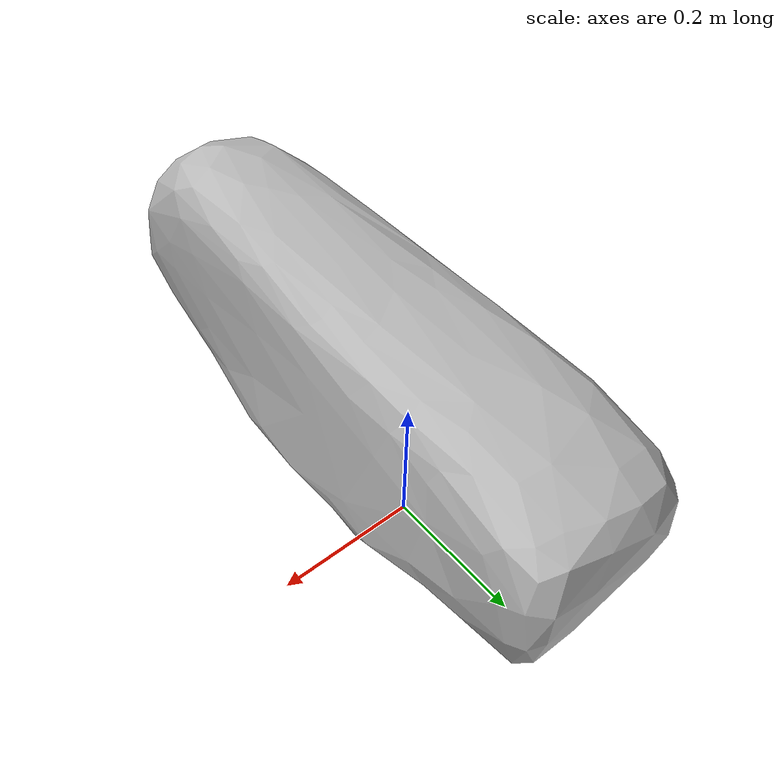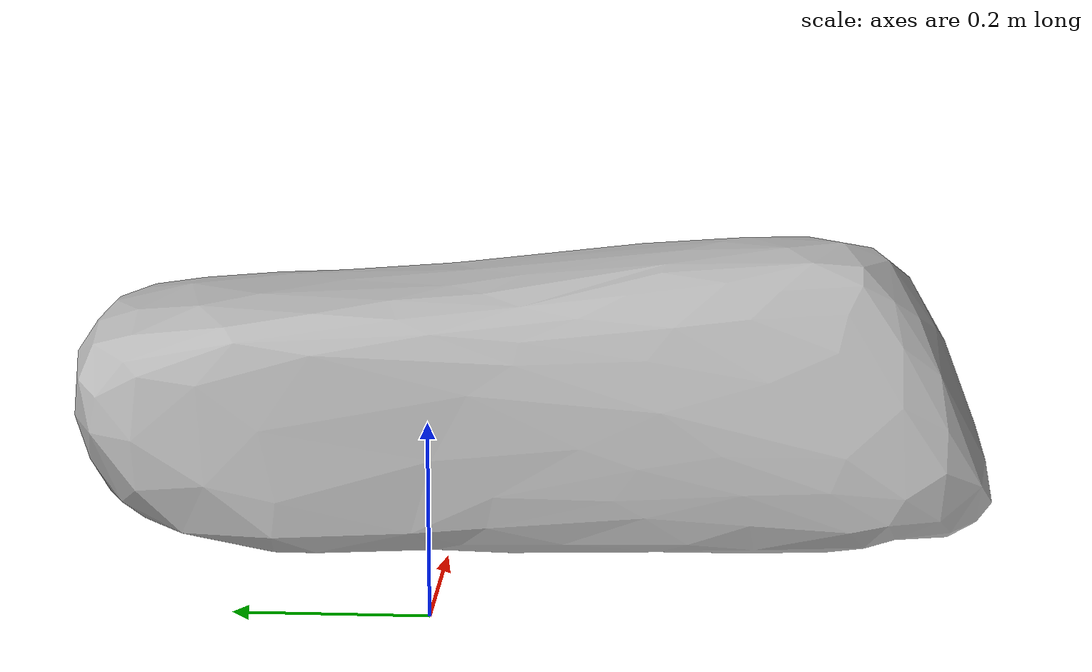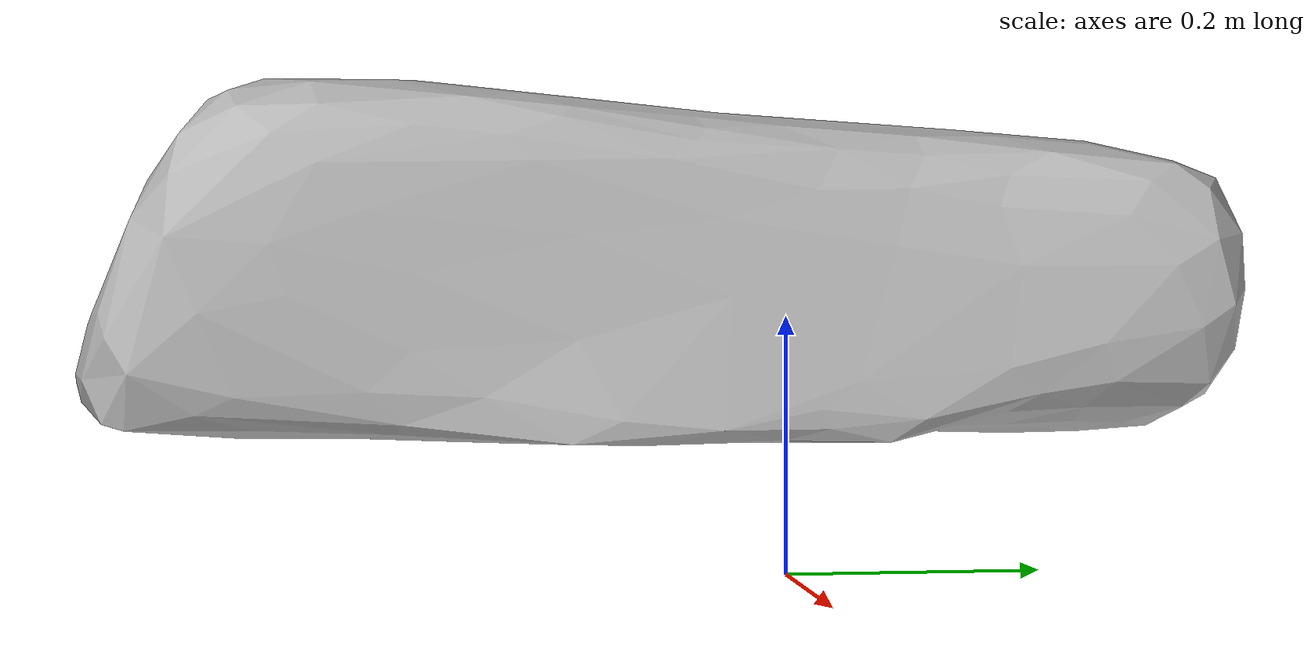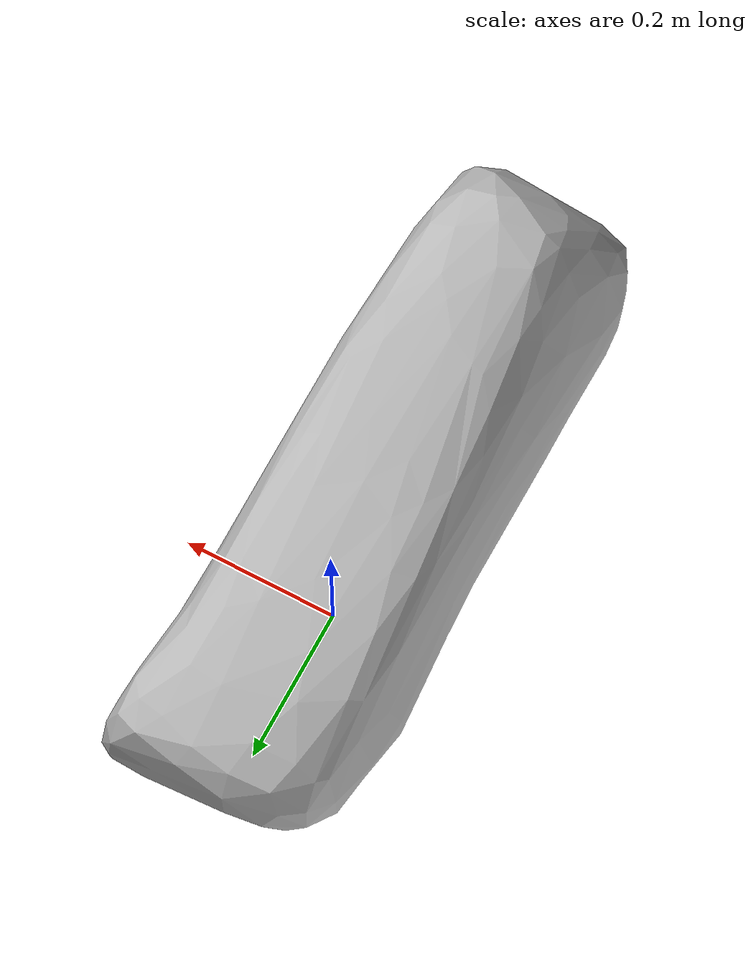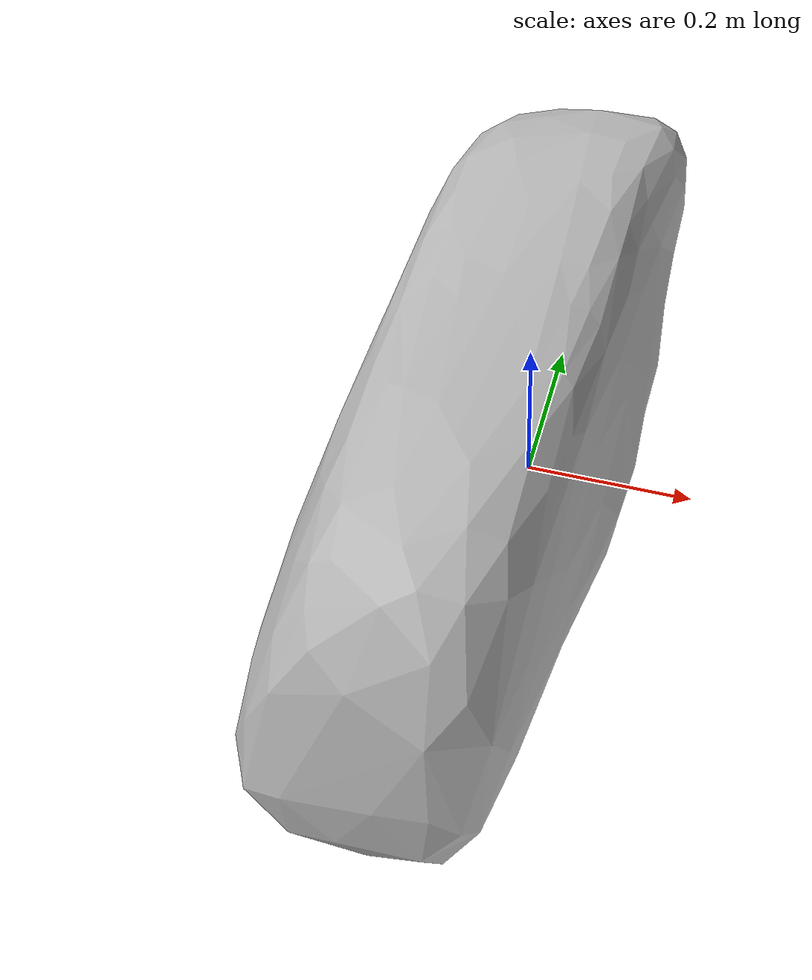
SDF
<?xml version="1.0" ?>
<sdf version="1.5">
  <model name="rock1">
    <link name="link">
      <pose>0 0 0.13005 0 0 0</pose>
      <inertial>
        <mass>100.0</mass>
        <inertia>
          <ixx>0.721987547-06</ixx>
          <ixy>0</ixy>
          <ixz>0</ixz>
          <iyy>3.249950068-05</iyy>
          <iyz>0</iyz>
          <izz>3.408170861-05</izz>
        </inertia>
      </inertial>

      <collision name="collision">
        <geometry>
          <mesh>
            <uri>model://rock1/meshes/rock1.dae</uri>
          </mesh>
        </geometry>
	</collision>

      <visual name="visual">
        <geometry>
	   <mesh>
             <uri>model://rock1/meshes/rock1.dae</uri>
          </mesh>
        </geometry>
	 <material>
          <script>
            <uri>model://my_ground_plane/materials/scripts/my_ground_plane.material</uri>
            <name>MyGroundPlane/Puukoor</name>
          </script>
        </material>
      </visual>
    </link>
  </model>
</sdf>
